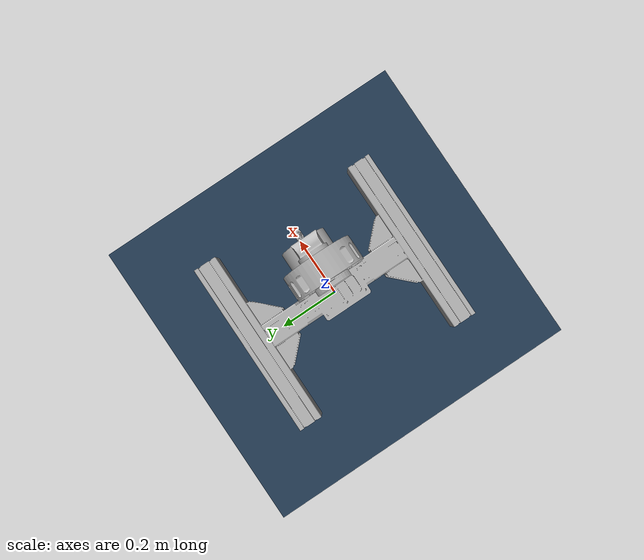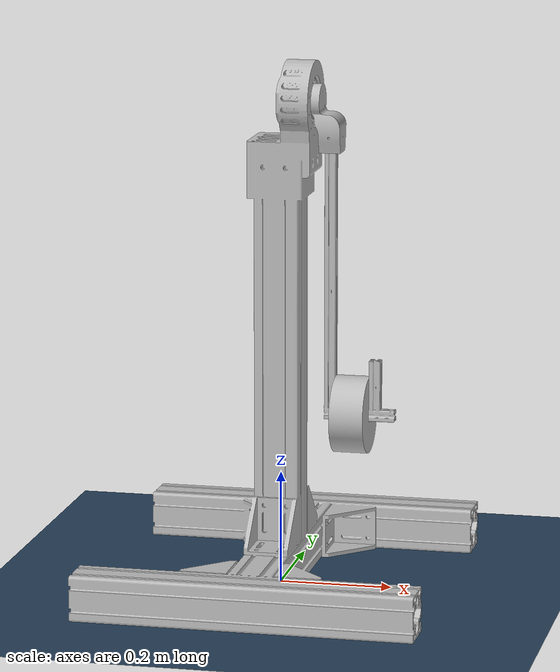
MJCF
<mujoco model="Test scene">

    <compiler angle="radian" />
    <option timestep="0.002" gravity="0 0 -9.81" />
    <default>
        <joint armature="0.0" damping="0.0" frictionloss="0.0" />
        <geom contype="1" conaffinity="1" />
    </default>

    <!-- Merge all needed meshes and materials from both files here -->
    <asset>
        <!-- Model meshes -->
        <mesh name="base_link_mesh" file="meshes/base_link.stl" scale="0.001 0.001 0.001" />
        <mesh name="link_shaft_1_mesh" file="meshes/link_shaft_1.stl" scale="0.001 0.001 0.001" />
        <mesh name="load_1_mesh" file="meshes/load_1.stl" scale="0.001 0.001 0.001" />
        <mesh name="shaft_holder_1_mesh" file="meshes/shaft_holder_1.stl" scale="0.001 0.001 0.001" />
        <!-- Add any extra meshes from the new scene if you use them -->
        <!-- Materials -->
        <material name="silver" rgba="0.75 0.75 0.75 1" />
        <!-- Extra materials from new scene if needed -->
        <material name="groundplane" texture="groundplane" texuniform="true" texrepeat="4 4"
            reflectance="0.2" />
        <!-- Textures from new scene if you want skybox/ground -->
        <texture type="skybox" builtin="gradient" rgb1="0.3 0.5 0.7" rgb2="0 0 0" width="512"
            height="3072" />
        <texture type="2d" name="groundplane" builtin="checker" mark="edge"
            rgb1="0.2 0.3 0.4" rgb2="0.1 0.2 0.3" markrgb="0.8 0.8 0.8"
            width="200" height="200" />
    </asset>

    <!-- Visual & statistic settings -->
    <statistic center="0 0 0.5" extent="0.6" meansize="0.04" />
    <visual>
        <headlight diffuse="0.6 0.6 0.6" ambient="0.3 0.3 0.3" specular="0.1 0.1 0.1" />
        <rgba haze="0.15 0.25 0.35 1" />
        <global azimuth="180" elevation="-20" />
        <quality shadowsize="4096" />
    </visual>

    <!-- World body -->
    <worldbody>
        <!-- Robot (from your previous conversion, one branch) -->
        <body name="base_link" pos="0 0 0">
            <inertial pos="0.0026107933704624746 -0.0004382706040496737 0.22878390583377264"
                mass="62.810240947483"
                diaginertia="7.791204 6.060359 3.32805" />
            <geom type="mesh"
                mesh="base_link_mesh"
                pos="0 0 0"
                material="silver" />
            <body name="shaft_holder_1" pos="0.059 0.0 0.865319">
                <joint name="Revolute_6" type="hinge" axis="-1 0 0" />
                <inertial pos="0.023688401403048218 -0.0008219615569868211 -0.03540203569279343"
                    mass="0.1697881382218178"
                    diaginertia="0.000182 0.000176 8e-05" />
                <geom type="mesh"
                    mesh="shaft_holder_1_mesh"
                    pos="-0.059 -0.0 -0.865319"
                    material="silver" />
                <body name="link_shaft_1" pos="0.031005 -0.001851 -0.043657">
                    <inertial pos="-0.090005 0.001851 -0.821662"
                        mass="0.0"
                        diaginertia="0 0 0" />
                    <geom type="mesh"
                        mesh="link_shaft_1_mesh"
                        pos="-0.090005 0.001851 -0.821662"
                        material="silver" />
                    <body name="load_1" pos="0.01 0.0 -0.508419">
                        <inertial
                            pos="0.03000032312420027 1.1376968177441438e-08 1.3697894057917992e-07"
                            mass="4.001549329526012"
                            diaginertia="0.009612 0.006006 0.006006" />
                        <geom type="mesh"
                            mesh="load_1_mesh"
                            pos="-0.100005 0.001851 -0.313243"
                            material="silver" />
                    </body>
                </body>
            </body>
        </body>
        <!-- Light and floor (from new scene) -->
        <light pos="0 0 2" dir="0 0 -1" directional="true" />
        <geom name="floor" type="plane" pos="0 0 0" size="10 10 0.05" material="groundplane" />
    </worldbody>

    <!-- Contact, actuator, sensor, keyframe sections from new scene -->
    <contact>
        <exclude body1="base_link" body2="shaft_holder_1" />
        <exclude body1="shaft_holder_1" body2="link_shaft_1" />
        <exclude body1="link_shaft_1" body2="load_1" />
        <!-- Add more if you have more adjacent links -->
    </contact>

    <actuator>
        <!-- Example actuator, adapt as needed -->
        <position name="Revolute_6_act" joint="Revolute_6" kp="150" kv="5.0" gear="1"
            ctrlrange="-6.2832 6.2832" />
    </actuator>

    <sensor>
        <jointpos joint="Revolute_6" name="Revolute_6_pos" />
        <jointvel joint="Revolute_6" name="Revolute_6_vel" />
    </sensor>

    <keyframe>
        <key name="home" ctrl="0" />
    </keyframe>
</mujoco>
